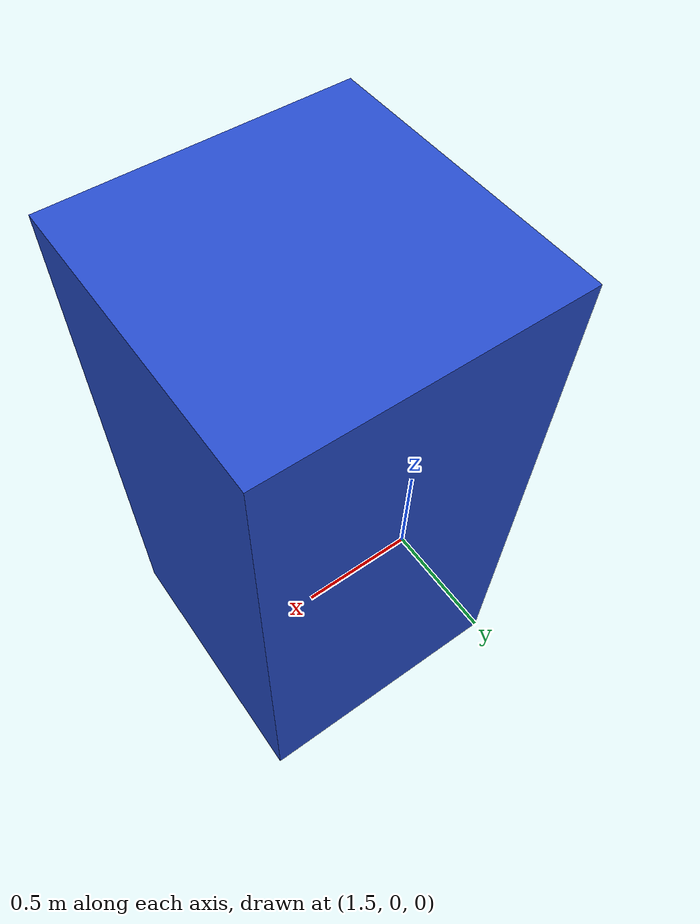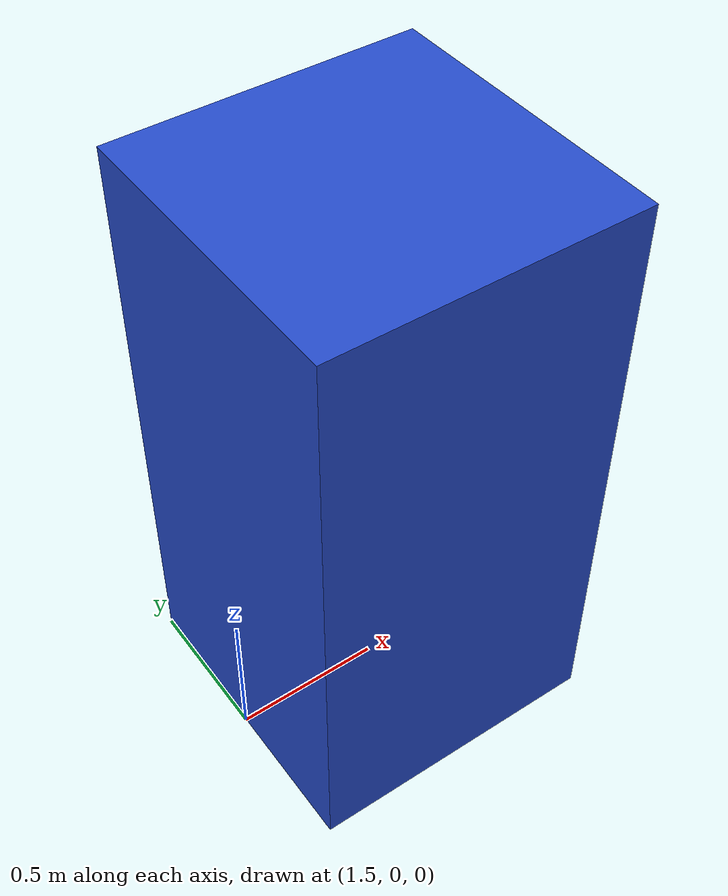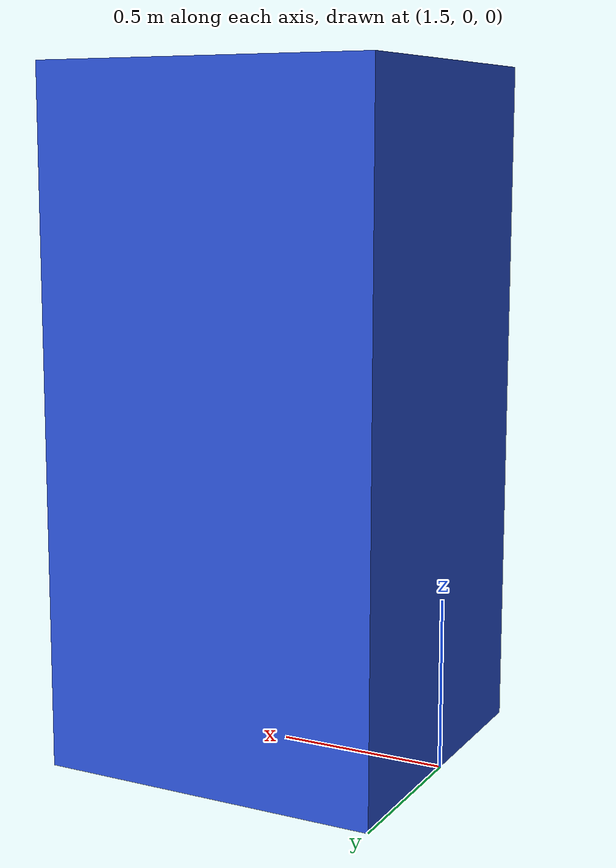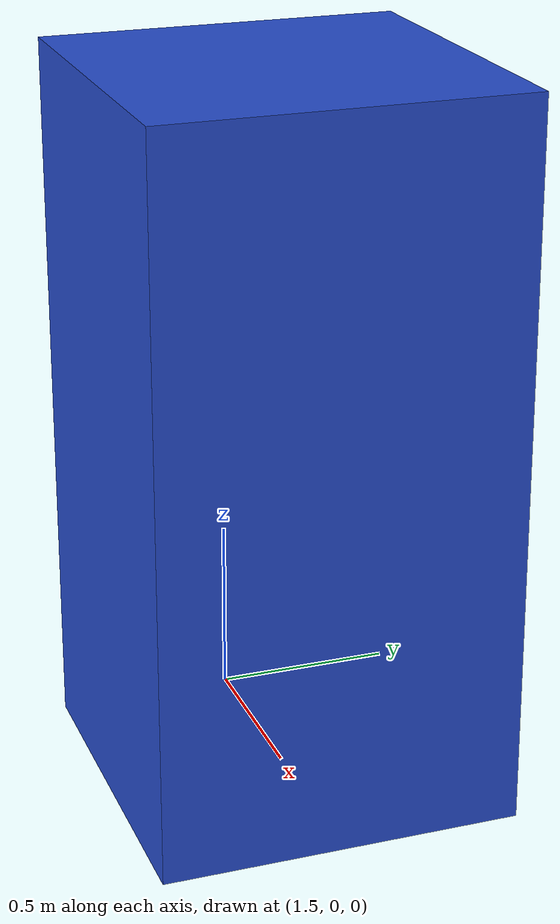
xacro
<?xml version="1.0" ?>
<!-- |    This document was autogenerated by xacro from grasp_object.urdf              | -->
<!-- |    EDITING THIS FILE BY HAND IS NOT RECOMMENDED                                 | -->
<!-- |    This document was autogenerated by xacro from grasp_object.xacro             | -->
<!-- |    EDITING THIS FILE BY HAND IS NOT RECOMMENDED                                 | -->
<robot name="seven_dof_arm" xmlns:xacro="http://www.ros.org/wiki/xacro">
  <link name="my_box">
    <inertial>
      <origin xyz="2 0 0"/>
      <mass value="1.0"/>
      <inertia ixx="1.0" ixy="0.0" ixz="0.0" iyy="100.0" iyz="0.0" izz="1.0"/>
    </inertial>
    <visual>
      <origin xyz="2 0 1"/>
      <geometry>
        <box size="1 1 2"/>
      </geometry>
    </visual>
    <collision>
      <origin xyz="2 0 1"/>
      <geometry>
        <box size="1 1 2"/>
      </geometry>
    </collision>
  </link>
  <gazebo reference="my_box">
    <material>Gazebo/Blue</material>
  </gazebo>
</robot>
